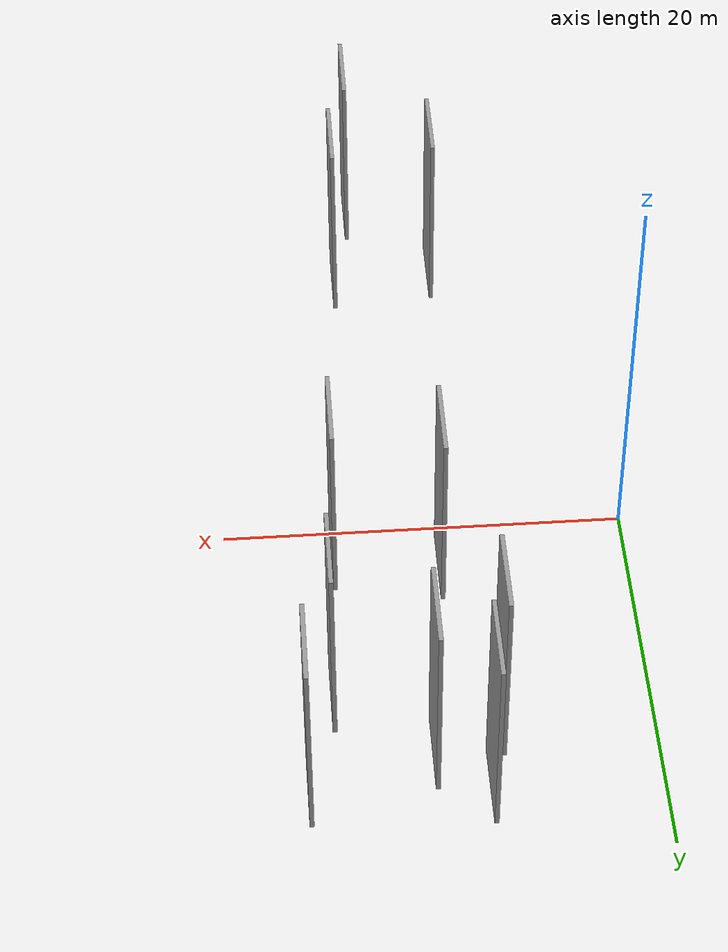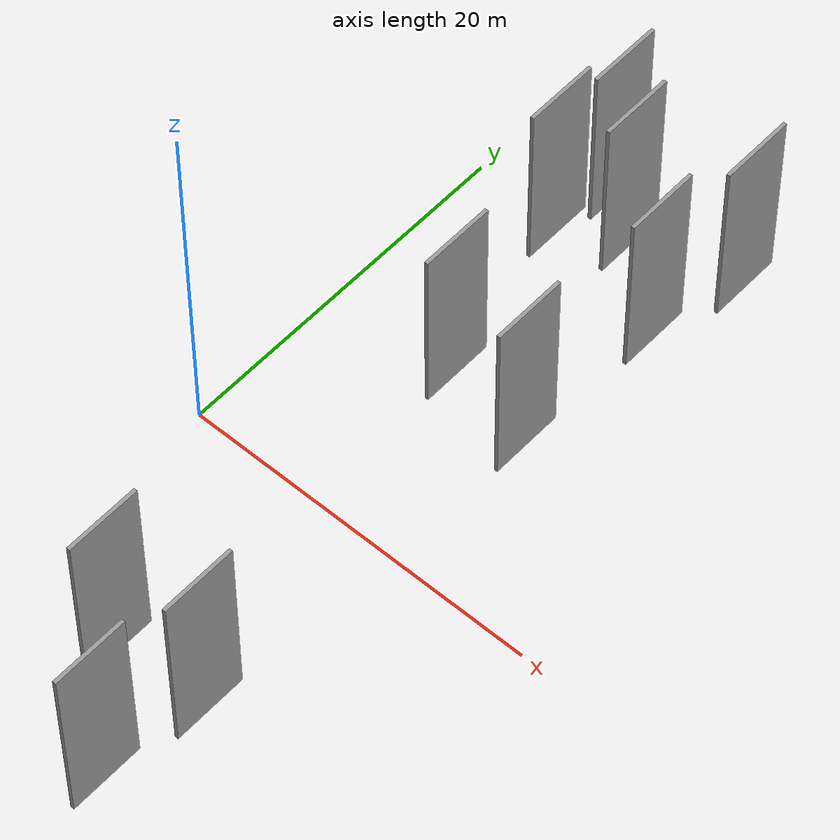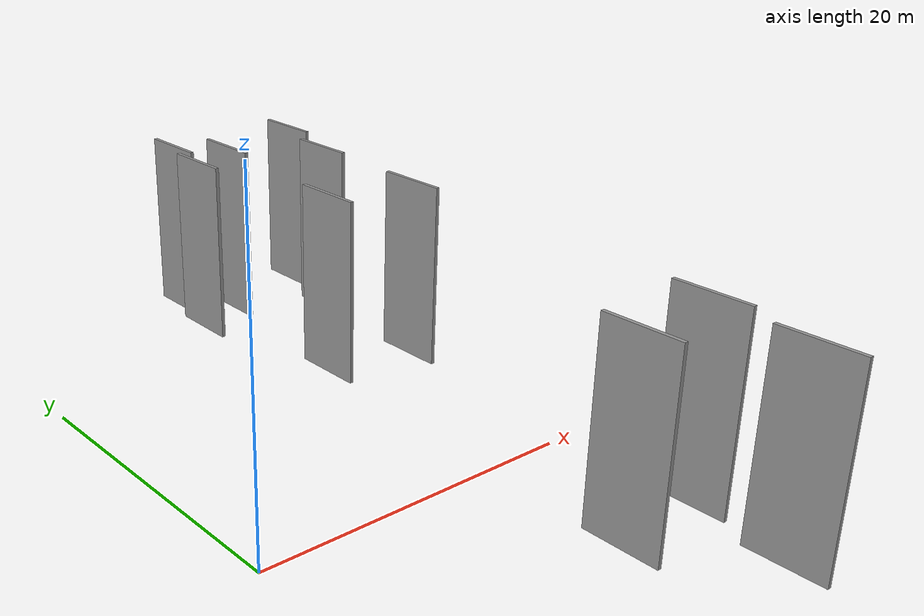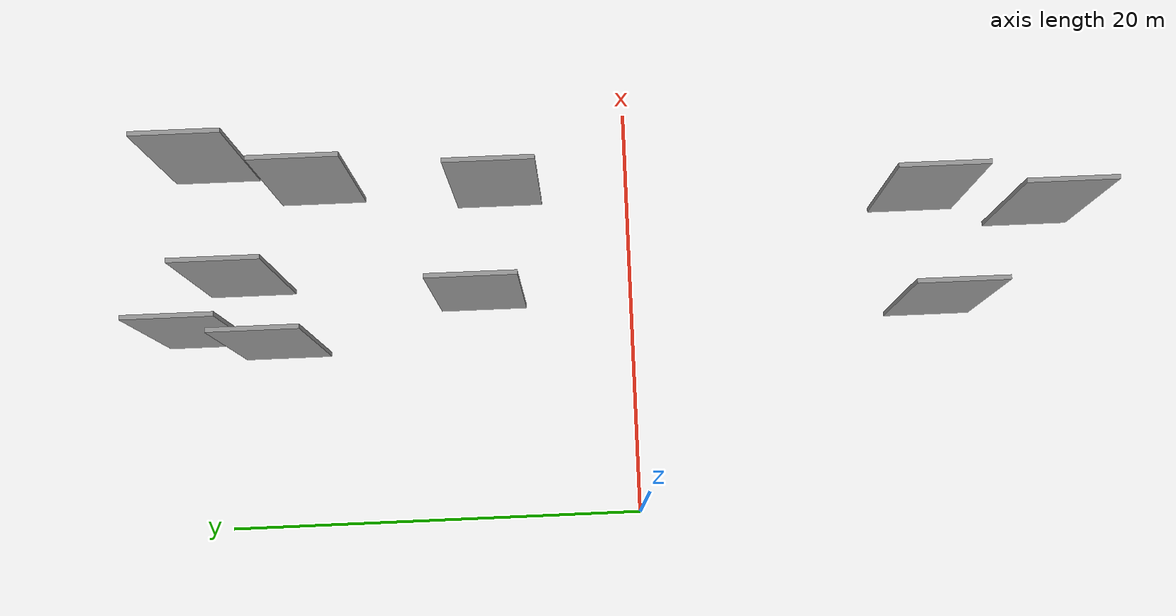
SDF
<sdf version="1.6">
 <world name="default">
  <scene>
   <sky><clouds><speed>12</speed></clouds></sky>
   <ambient>0.4 0.4 0.4 1</ambient>
   <background>0.7 0.7 0.7 1</background>
   <shadows>1</shadows>
  </scene>
  <gravity>0 0 -9.8066</gravity>
  <magnetic_field>6e-06 2.3e-05 -4.2e-05</magnetic_field>
  <physics default="0" name="default_physics" type="ode">
   <ode>
    <solver>
     <type>quick</type>
     <iters>10</iters>
     <sor>1.0</sor>
     <use_dynamic_moi_rescaling>0</use_dynamic_moi_rescaling>
    </solver>
    <constraints>
     <cfm>0</cfm>
     <erp>0.2</erp>
     <contact_max_correcting_vel>100</contact_max_correcting_vel>
     <contact_surface_layer>0.001</contact_surface_layer>
    </constraints>
   </ode>
   <max_step_size>0.004</max_step_size>
   <real_time_factor>1</real_time_factor>
   <real_time_update_rate>250</real_time_update_rate>
  </physics>
  <light name="sun" type="directional">
   <pose>0 0 10 0 0 0</pose>
   <diffuse>0.8 0.8 0.8 1</diffuse>
   <specular>0.2 0.2 0.2 1</specular>
   <attenuation>
    <range>1000</range>
    <constant>0.9</constant>
    <linear>0.01</linear>
    <quadratic>0.001</quadratic>
   </attenuation>
   <direction>-0.5 0.1 -0.9</direction>
  </light>
  <model name="grey_wall_1">
   <static>1</static>
   <pose>8.4917 19.9503 5.0 0.000000 0.000000 1.570796</pose>
   <link name="link">
    <pose>0 0 5.00 0 0 0</pose>
    <collision name="collision"><geometry><box><size>4.00 0.2 10.00</size></box></geometry></collision>
    <visual name="visual">
     <cast_shadows>0</cast_shadows>
     <geometry><box><size>4.00 0.2 10.00</size></box></geometry>
     <material>
      <script>
       <uri>model://grey_wall/materials/scripts</uri>
       <uri>model://grey_wall/materials/textures</uri>
       <name>vrc/grey_wall</name>
      </script>
     </material>
    </visual>
   </link>
  </model>
  <model name="grey_wall_2">
   <static>1</static>
   <pose>7.8116 16.3428 5.0 0.000000 0.000000 1.570796</pose>
   <link name="link">
    <pose>0 0 5.00 0 0 0</pose>
    <collision name="collision"><geometry><box><size>4.00 0.2 10.00</size></box></geometry></collision>
    <visual name="visual">
     <cast_shadows>0</cast_shadows>
     <geometry><box><size>4.00 0.2 10.00</size></box></geometry>
     <material>
      <script>
       <uri>model://grey_wall/materials/scripts</uri>
       <uri>model://grey_wall/materials/textures</uri>
       <name>vrc/grey_wall</name>
      </script>
     </material>
    </visual>
   </link>
  </model>
  <model name="grey_wall_3">
   <static>1</static>
   <pose>12.7673 -18.8092 5.0 0.000000 0.000000 1.570796</pose>
   <link name="link">
    <pose>0 0 5.00 0 0 0</pose>
    <collision name="collision"><geometry><box><size>4.00 0.2 10.00</size></box></geometry></collision>
    <visual name="visual">
     <cast_shadows>0</cast_shadows>
     <geometry><box><size>4.00 0.2 10.00</size></box></geometry>
     <material>
      <script>
       <uri>model://grey_wall/materials/scripts</uri>
       <uri>model://grey_wall/materials/textures</uri>
       <name>vrc/grey_wall</name>
      </script>
     </material>
    </visual>
   </link>
  </model>
  <model name="grey_wall_4">
   <static>1</static>
   <pose>9.7379 7.0762 5.0 0.000000 0.000000 1.570796</pose>
   <link name="link">
    <pose>0 0 5.00 0 0 0</pose>
    <collision name="collision"><geometry><box><size>4.00 0.2 10.00</size></box></geometry></collision>
    <visual name="visual">
     <cast_shadows>0</cast_shadows>
     <geometry><box><size>4.00 0.2 10.00</size></box></geometry>
     <material>
      <script>
       <uri>model://grey_wall/materials/scripts</uri>
       <uri>model://grey_wall/materials/textures</uri>
       <name>vrc/grey_wall</name>
      </script>
     </material>
    </visual>
   </link>
  </model>
  <model name="grey_wall_5">
   <static>1</static>
   <pose>8.6348 -13.8364 5.0 0.000000 0.000000 1.570796</pose>
   <link name="link">
    <pose>0 0 5.00 0 0 0</pose>
    <collision name="collision"><geometry><box><size>4.00 0.2 10.00</size></box></geometry></collision>
    <visual name="visual">
     <cast_shadows>0</cast_shadows>
     <geometry><box><size>4.00 0.2 10.00</size></box></geometry>
     <material>
      <script>
       <uri>model://grey_wall/materials/scripts</uri>
       <uri>model://grey_wall/materials/textures</uri>
       <name>vrc/grey_wall</name>
      </script>
     </material>
    </visual>
   </link>
  </model>
  <model name="grey_wall_6">
   <static>1</static>
   <pose>10.8564 17.9730 5.0 0.000000 0.000000 1.570796</pose>
   <link name="link">
    <pose>0 0 5.00 0 0 0</pose>
    <collision name="collision"><geometry><box><size>4.00 0.2 10.00</size></box></geometry></collision>
    <visual name="visual">
     <cast_shadows>0</cast_shadows>
     <geometry><box><size>4.00 0.2 10.00</size></box></geometry>
     <material>
      <script>
       <uri>model://grey_wall/materials/scripts</uri>
       <uri>model://grey_wall/materials/textures</uri>
       <name>vrc/grey_wall</name>
      </script>
     </material>
    </visual>
   </link>
  </model>
  <model name="grey_wall_7">
   <static>1</static>
   <pose>16.4301 19.5976 5.0 0.000000 0.000000 1.570796</pose>
   <link name="link">
    <pose>0 0 5.00 0 0 0</pose>
    <collision name="collision"><geometry><box><size>4.00 0.2 10.00</size></box></geometry></collision>
    <visual name="visual">
     <cast_shadows>0</cast_shadows>
     <geometry><box><size>4.00 0.2 10.00</size></box></geometry>
     <material>
      <script>
       <uri>model://grey_wall/materials/scripts</uri>
       <uri>model://grey_wall/materials/textures</uri>
       <name>vrc/grey_wall</name>
      </script>
     </material>
    </visual>
   </link>
  </model>
  <model name="grey_wall_8">
   <static>1</static>
   <pose>14.7042 6.1632 5.0 0.000000 0.000000 1.570796</pose>
   <link name="link">
    <pose>0 0 5.00 0 0 0</pose>
    <collision name="collision"><geometry><box><size>4.00 0.2 10.00</size></box></geometry></collision>
    <visual name="visual">
     <cast_shadows>0</cast_shadows>
     <geometry><box><size>4.00 0.2 10.00</size></box></geometry>
     <material>
      <script>
       <uri>model://grey_wall/materials/scripts</uri>
       <uri>model://grey_wall/materials/textures</uri>
       <name>vrc/grey_wall</name>
      </script>
     </material>
    </visual>
   </link>
  </model>
  <model name="grey_wall_9">
   <static>1</static>
   <pose>15.1684 14.5509 5.0 0.000000 0.000000 1.570796</pose>
   <link name="link">
    <pose>0 0 5.00 0 0 0</pose>
    <collision name="collision"><geometry><box><size>4.00 0.2 10.00</size></box></geometry></collision>
    <visual name="visual">
     <cast_shadows>0</cast_shadows>
     <geometry><box><size>4.00 0.2 10.00</size></box></geometry>
     <material>
      <script>
       <uri>model://grey_wall/materials/scripts</uri>
       <uri>model://grey_wall/materials/textures</uri>
       <name>vrc/grey_wall</name>
      </script>
     </material>
    </visual>
   </link>
  </model>
  <model name="grey_wall_10">
   <static>1</static>
   <pose>13.6669 -13.3893 5.0 0.000000 0.000000 1.570796</pose>
   <link name="link">
    <pose>0 0 5.00 0 0 0</pose>
    <collision name="collision"><geometry><box><size>4.00 0.2 10.00</size></box></geometry></collision>
    <visual name="visual">
     <cast_shadows>0</cast_shadows>
     <geometry><box><size>4.00 0.2 10.00</size></box></geometry>
     <material>
      <script>
       <uri>model://grey_wall/materials/scripts</uri>
       <uri>model://grey_wall/materials/textures</uri>
       <name>vrc/grey_wall</name>
      </script>
     </material>
    </visual>
   </link>
  </model>
 </world>
</sdf>
